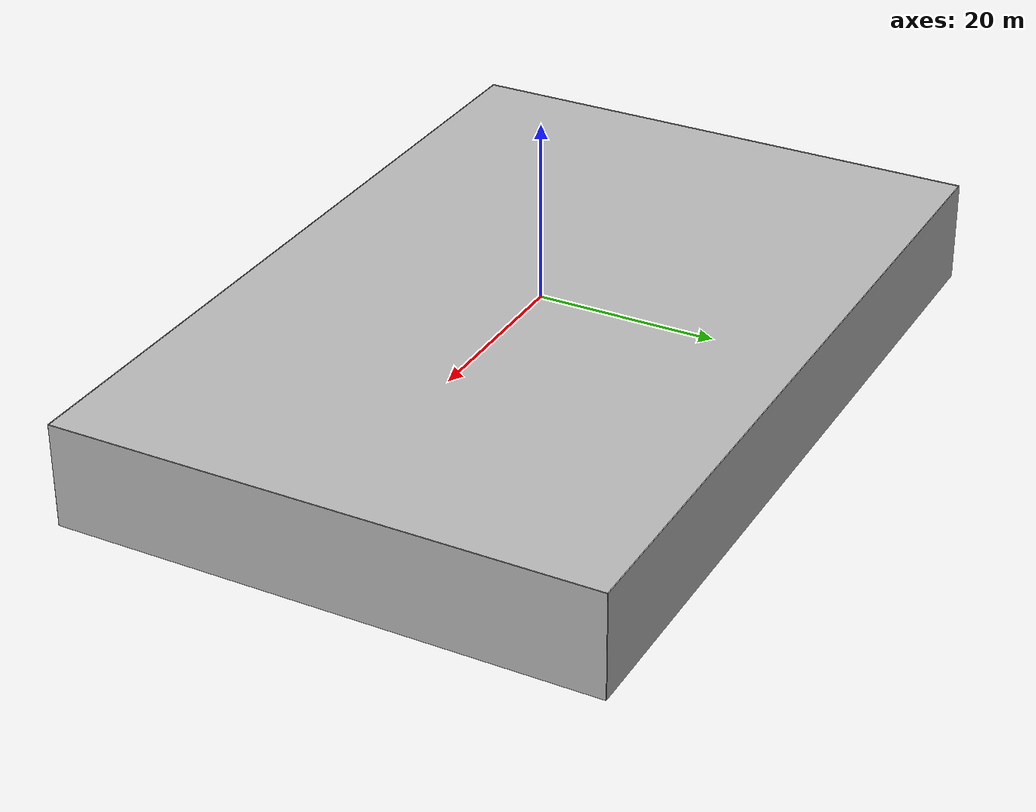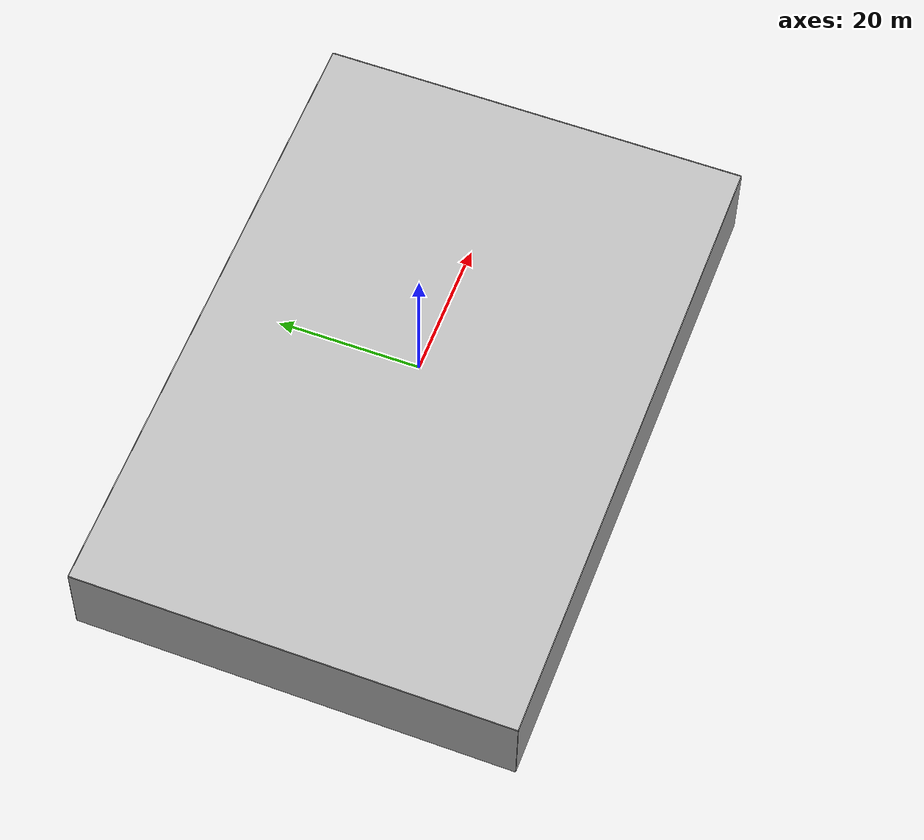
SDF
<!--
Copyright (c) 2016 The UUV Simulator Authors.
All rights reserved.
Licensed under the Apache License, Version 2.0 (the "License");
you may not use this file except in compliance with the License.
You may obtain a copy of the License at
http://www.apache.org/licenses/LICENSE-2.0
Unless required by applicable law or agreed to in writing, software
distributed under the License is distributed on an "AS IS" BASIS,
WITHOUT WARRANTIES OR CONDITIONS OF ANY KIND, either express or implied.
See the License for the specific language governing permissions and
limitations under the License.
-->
<sdf version="1.5">
 <world name="qual_robosub_arena">
  <physics name="default_physics" default="true" type="ode">
   <max_step_size>0.002</max_step_size>
   <real_time_factor>1</real_time_factor>
   <real_time_update_rate>500</real_time_update_rate>
   <ode><solver><type>quick</type><iters>50</iters><sor>0.5</sor></solver></ode>
  </physics>
  <scene>
   <ambient>0.01 0.01 0.01 1.0</ambient>
   <sky><clouds><speed>12</speed></clouds></sky>
   <shadows>1</shadows>
   <fog>
    <color>0.1 0.2 0.3 1.0</color>
    <type>linear</type>
    <density>0.001</density>
    <start>10</start>
    <end>200</end>
   </fog>
  </scene>
  <spherical_coordinates>
   <latitude_deg>56.71897669633431</latitude_deg>
   <longitude_deg>3.515625</longitude_deg>
  </spherical_coordinates>
  <light name="sun" type="directional">
   <pose>0 0 10 0 0 0</pose>
   <diffuse>0.8 0.8 0.8 1</diffuse>
   <specular>0.2 0.2 0.2 1</specular>
   <attenuation>
    <range>1000</range>
    <constant>0.9</constant>
    <linear>0.01</linear>
    <quadratic>0.001</quadratic>
   </attenuation>
   <direction>0.5 0.0 -0.9</direction>
  </light>
  <include><uri>model://ocean_box</uri></include>
  <plugin name="underwater_current_plugin" filename="libuuv_underwater_current_ros_plugin.so">
   <namespace>hydrodynamics</namespace>
   <constant_current>
    <topic>current_velocity</topic>
    <velocity><mean>0</mean><min>0</min><max>5</max><mu>0.0</mu><noiseAmp>0.0</noiseAmp></velocity>
    <horizontal_angle>
     <mean>0</mean>
     <min>-3.141592653589793238</min>
     <max>3.141592653589793238</max>
     <mu>0.0</mu>
     <noiseAmp>0.0</noiseAmp>
    </horizontal_angle>
    <vertical_angle>
     <mean>0</mean>
     <min>-3.141592653589793238</min>
     <max>3.141592653589793238</max>
     <mu>0.0</mu>
     <noiseAmp>0.0</noiseAmp>
    </vertical_angle>
   </constant_current>
  </plugin>
  <plugin name="sc_interface" filename="libuuv_sc_ros_interface_plugin.so"/>
 </world>
</sdf>

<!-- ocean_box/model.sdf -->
<sdf version="1.5">
  <model name="ocean_box">
    <static>true</static>
    <link name="link">
      <visual name="ground">
        <cast_shadows>false</cast_shadows>
        <pose>0 0 -11.6 0 0 0</pose>
        <geometry>
          <box>
            <size>91 61 .1</size>
          </box>
        </geometry>
        <material>
          <script>
            <uri>file://Media/materials/scripts/sand.material</uri>
            <name>UUVSimulator/SandAndStones</name>
          </script>
        </material>
      </visual>

      <collision name="ground">
        <pose>0 0 -11.6 0 0 0</pose>
        <geometry>
          <box>
            <size>91 61 .1</size>
          </box>
        </geometry>
      </collision>

      <visual name="surface">
        <cast_shadows>false</cast_shadows>
        <pose>0 0 0 0 0 0</pose>
        <geometry>
          <box>
            <size>91 61 .1</size>
          </box>
        </geometry>
        <material>
          <script>
            <uri>file://Media/materials/scripts/water.material</uri>
            <name>UUVSimulator/StaticDeepWater</name>
          </script>
        </material>
      </visual>

      <visual name="north">
        <cast_shadows>false</cast_shadows>
        <pose>45.5 0 -5.8 0 0 0</pose>
        <geometry>
          <box>
            <size>.1 61 11.8</size>
          </box>
        </geometry>
        <material>
          <script>
            <uri>file://Media/materials/scripts/water.material</uri>
            <name>UUVSimulator/SeaWall</name>
          </script>
        </material>
      </visual>

      <visual name="south">
        <cast_shadows>false</cast_shadows>
        <pose>-45.5 0 -5.8 0 0 0</pose>
        <geometry>
          <box>
            <size>.1 61 11.8</size>
          </box>
        </geometry>
        <material>
          <script>
            <uri>file://Media/materials/scripts/water.material</uri>
            <name>UUVSimulator/SeaWall</name>
          </script>
        </material>
      </visual>

      <visual name="east">
        <cast_shadows>false</cast_shadows>
        <pose>0 -30.5 -5.8 0 0 0</pose>
        <geometry>
          <box>
            <size>91 .1 11.8</size>
          </box>
        </geometry>
        <material>
          <script>
            <uri>file://Media/materials/scripts/water.material</uri>
            <name>UUVSimulator/SeaWall</name>
          </script>
        </material>
      </visual>

      <visual name="west">
        <cast_shadows>false</cast_shadows>
        <pose>0 30.5 -5.8 0 0 0</pose>
        <geometry>
          <box>
            <size>91 .1 11.8</size>
          </box>
        </geometry>
        <material>
          <script>
            <uri>file://Media/materials/scripts/water.material</uri>
            <name>UUVSimulator/SeaWall</name>
          </script>
        </material>
      </visual>
    </link>
  </model>
</sdf>
